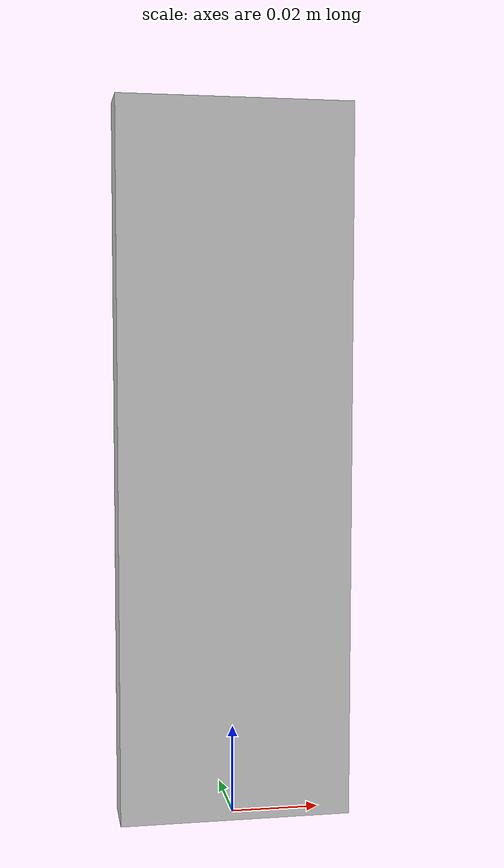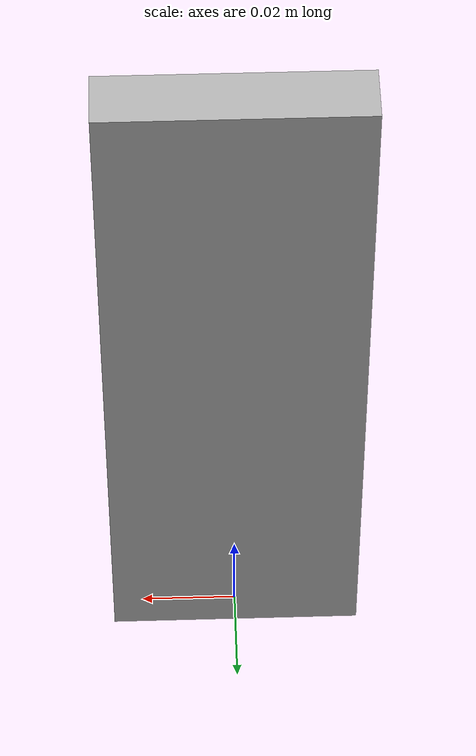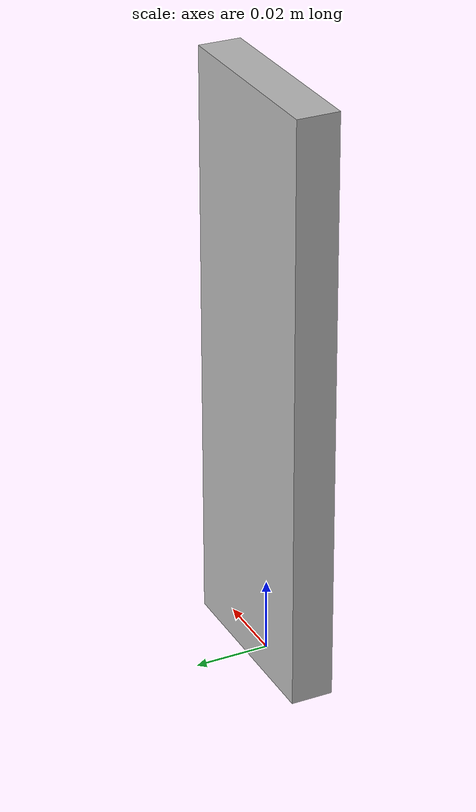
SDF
<?xml version="1.0"?>
<sdf version="1.9">
  <model name="textured_drug_001">
    <static>false</static>
    <self_collide>false</self_collide>
    <link name="body">
      <inertial>
        <pose>0 0 0.080000 0 0 0</pose>
        <mass>0.020799</mass>
        <inertia>
          <ixx>0.00004459</ixx>
          <ixy>0.0</ixy>
          <ixz>0.0</ixz>
          <iyy>0.00004911</iyy>
          <iyz>0.0</iyz>
          <izz>0.00000496</izz>
        </inertia>
      </inertial>
      <collision name="collision">
        <pose>0 0 0.080000 0 0 0</pose>
        <geometry><box><size>0.052304 0.011297 0.160000</size></box></geometry>
        <surface>
          <friction>
            <ode>
              <mu>1.300</mu>
              <mu2>1.300</mu2>
            </ode>
          </friction>
          <contact>
            <ode>
              <kp>120000.0</kp>
              <kd>8.0</kd>
            </ode>
          </contact>
        </surface>
      </collision>
      <visual name="visual">
        <pose>0 0 0.080000 0 0 0</pose>
        <geometry>
          <mesh>
            <uri>meshes/model.obj</uri>
            <scale>1 1.350000 1.000000</scale>
          </mesh>
        </geometry>
      </visual>
    </link>
  </model>
</sdf>
